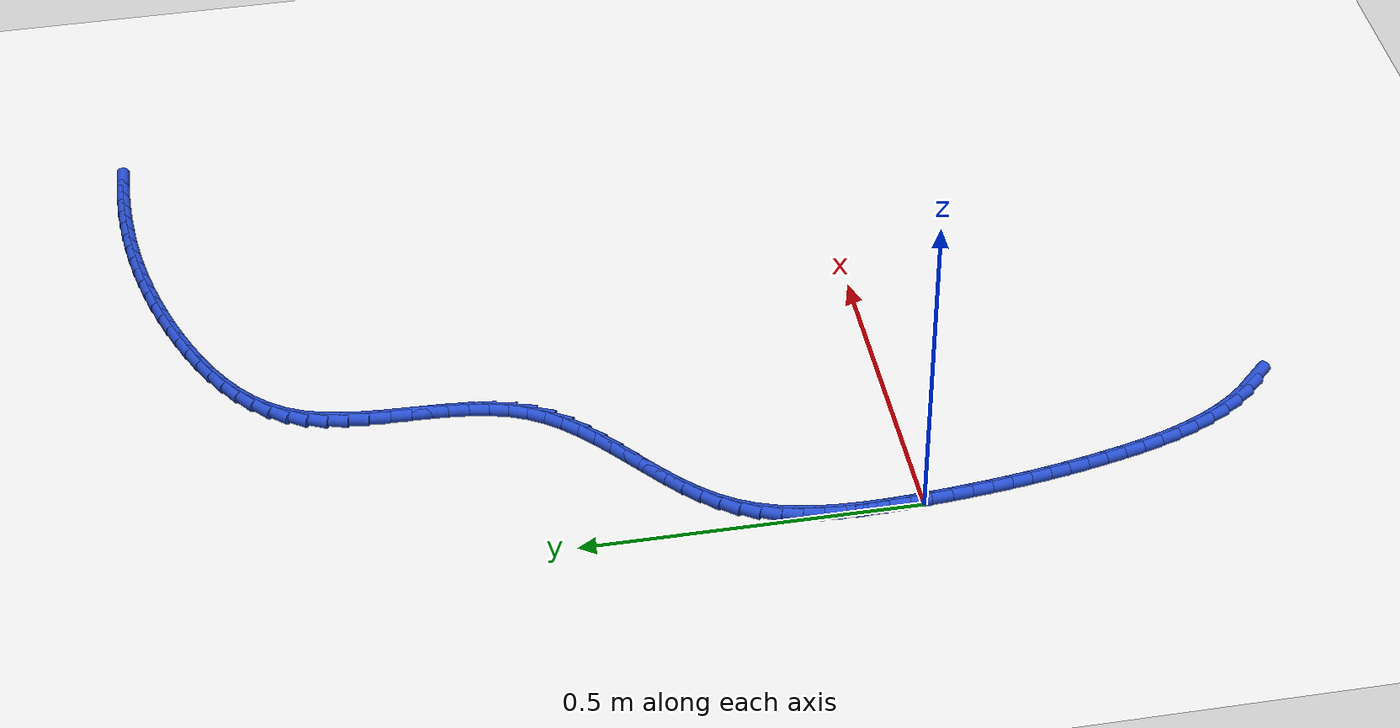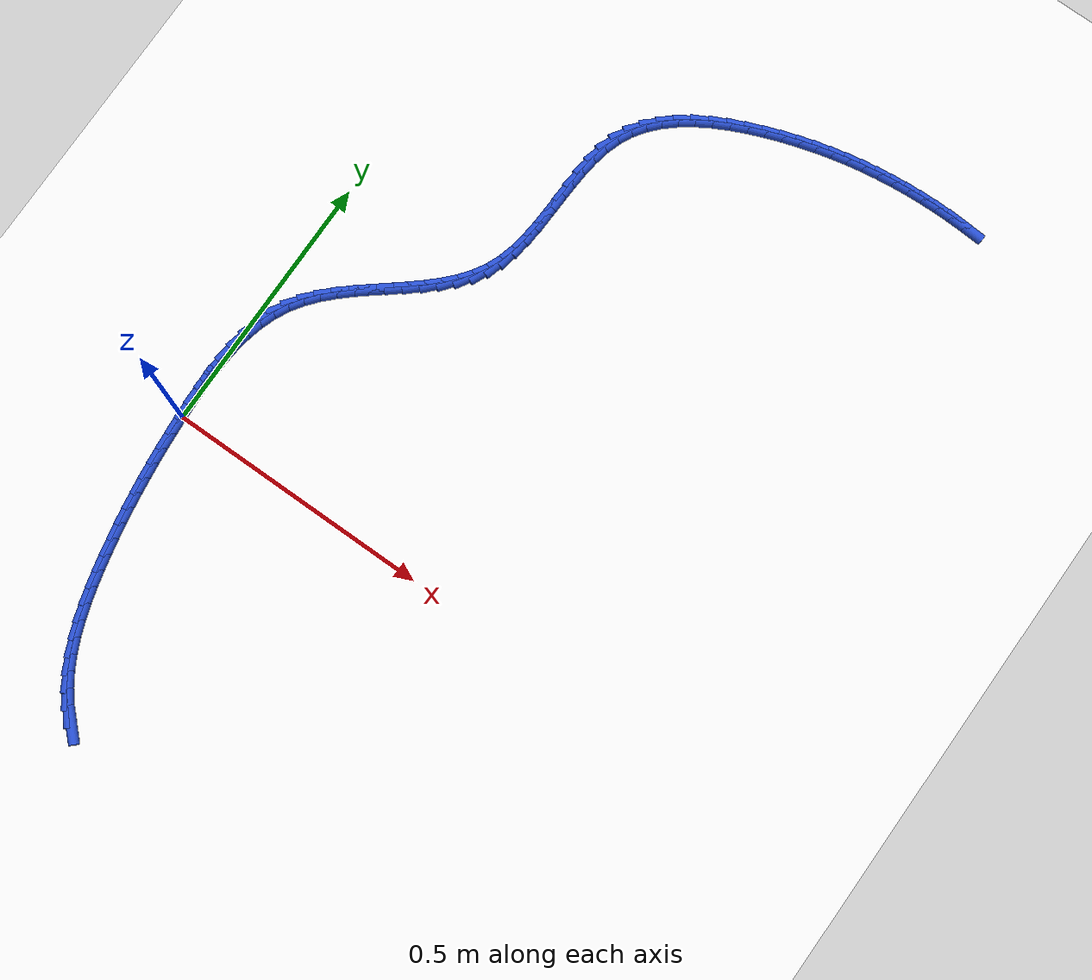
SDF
<sdf version="1.6">
 <world name="default">
  <model name="ground_plane">
   <static>1</static>
   <link name="link">
    <collision name="collision">
     <geometry><plane><normal>0 0 1</normal><size>100 100</size></plane></geometry>
     <surface><friction><ode><mu>100</mu><mu2>50</mu2></ode></friction></surface>
    </collision>
    <visual name="visual">
     <cast_shadows>0</cast_shadows>
     <geometry><plane><normal>0 0 1</normal><size>100 100</size></plane></geometry>
     <material>
      <script><uri>file://media/materials/scripts/gazebo.material</uri><name>Gazebo/WhiteGlow</name></script>
     </material>
    </visual>
   </link>
  </model>
  <model name="line">
   <link name="link_0">
    <pose>-1.8431436932253575e-17 3.469446951953614e-17 0.01 0 1.57 -1.5108364362840674</pose>
    <collision name="collision">
     <geometry><cylinder><radius>0.01</radius><length>0.08</length></cylinder></geometry>
    </collision>
    <visual name="visual">
     <material>
      <script><name>Gazebo/Blue</name><uri>file://media/materials/scripts/gazebo.material</uri></script>
     </material>
     <geometry><cylinder><radius>0.01</radius><length>0.08</length></cylinder></geometry>
    </visual>
   </link>
   <link name="link_1">
    <pose>-0.0018603580479526589 0.030989517353228024 0.01 0 1.57 -1.5329625650588325</pose>
    <collision name="collision">
     <geometry><cylinder><radius>0.01</radius><length>0.08</length></cylinder></geometry>
    </collision>
    <visual name="visual">
     <material>
      <script><name>Gazebo/Blue</name><uri>file://media/materials/scripts/gazebo.material</uri></script>
     </material>
     <geometry><cylinder><radius>0.01</radius><length>0.08</length></cylinder></geometry>
    </visual>
   </link>
   <link name="link_2">
    <pose>-0.003043777788168357 0.062254054253526286 0.01 0 1.57 -1.5652332365933455</pose>
    <collision name="collision">
     <geometry><cylinder><radius>0.01</radius><length>0.08</length></cylinder></geometry>
    </collision>
    <visual name="visual">
     <material>
      <script><name>Gazebo/Blue</name><uri>file://media/materials/scripts/gazebo.material</uri></script>
     </material>
     <geometry><cylinder><radius>0.01</radius><length>0.08</length></cylinder></geometry>
    </visual>
   </link>
   <link name="link_3">
    <pose>-0.00321780486593825 0.09353617915164875 0.01 0 1.57 1.5331937595008902</pose>
    <collision name="collision">
     <geometry><cylinder><radius>0.01</radius><length>0.08</length></cylinder></geometry>
    </collision>
    <visual name="visual">
     <material>
      <script><name>Gazebo/Blue</name><uri>file://media/materials/scripts/gazebo.material</uri></script>
     </material>
     <geometry><cylinder><radius>0.01</radius><length>0.08</length></cylinder></geometry>
    </visual>
   </link>
   <link name="link_4">
    <pose>-0.002049984926553456 0.12457846049834907 0.01 0 1.57 1.478016462440718</pose>
    <collision name="collision">
     <geometry><cylinder><radius>0.01</radius><length>0.08</length></cylinder></geometry>
    </collision>
    <visual name="visual">
     <material>
      <script><name>Gazebo/Blue</name><uri>file://media/materials/scripts/gazebo.material</uri></script>
     </material>
     <geometry><cylinder><radius>0.01</radius><length>0.08</length></cylinder></geometry>
    </visual>
   </link>
   <link name="link_5">
    <pose>0.0007921363846948824 0.15512346674438132 0.01 0 1.57 1.4094443238107668</pose>
    <collision name="collision">
     <geometry><cylinder><radius>0.01</radius><length>0.08</length></cylinder></geometry>
    </collision>
    <visual name="visual">
     <material>
      <script><name>Gazebo/Blue</name><uri>file://media/materials/scripts/gazebo.material</uri></script>
     </material>
     <geometry><cylinder><radius>0.01</radius><length>0.08</length></cylinder></geometry>
    </visual>
   </link>
   <link name="link_6">
    <pose>0.005641013422515643 0.18491376634049916 0.01 0 1.57 1.3260287247107136</pose>
    <collision name="collision">
     <geometry><cylinder><radius>0.01</radius><length>0.08</length></cylinder></geometry>
    </collision>
    <visual name="visual">
     <material>
      <script><name>Gazebo/Blue</name><uri>file://media/materials/scripts/gazebo.material</uri></script>
     </material>
     <geometry><cylinder><radius>0.01</radius><length>0.08</length></cylinder></geometry>
    </visual>
   </link>
   <link name="link_7">
    <pose>0.012829100541617695 0.21369192773745646 0.01 0 1.57 1.226636240695132</pose>
    <collision name="collision">
     <geometry><cylinder><radius>0.01</radius><length>0.08</length></cylinder></geometry>
    </collision>
    <visual name="visual">
     <material>
      <script><name>Gazebo/Blue</name><uri>file://media/materials/scripts/gazebo.material</uri></script>
     </material>
     <geometry><cylinder><radius>0.01</radius><length>0.08</length></cylinder></geometry>
    </visual>
   </link>
   <link name="link_8">
    <pose>0.02268885209670991 0.2412005193860071 0.01 0 1.57 1.1110644961267344</pose>
    <collision name="collision">
     <geometry><cylinder><radius>0.01</radius><length>0.08</length></cylinder></geometry>
    </collision>
    <visual name="visual">
     <material>
      <script><name>Gazebo/Blue</name><uri>file://media/materials/scripts/gazebo.material</uri></script>
     </material>
     <geometry><cylinder><radius>0.01</radius><length>0.08</length></cylinder></geometry>
    </visual>
   </link>
   <link name="link_9">
    <pose>0.035552722442501156 0.2671821097369049 0.01 0 1.57 0.9852909173942257</pose>
    <collision name="collision">
     <geometry><cylinder><radius>0.01</radius><length>0.08</length></cylinder></geometry>
    </collision>
    <visual name="visual">
     <material>
      <script><name>Gazebo/Blue</name><uri>file://media/materials/scripts/gazebo.material</uri></script>
     </material>
     <geometry><cylinder><radius>0.01</radius><length>0.08</length></cylinder></geometry>
    </visual>
   </link>
   <link name="link_10">
    <pose>0.05164222435093219 0.29144743432178616 0.01 0 1.57 0.8764779752378719</pose>
    <collision name="collision">
     <geometry><cylinder><radius>0.01</radius><length>0.08</length></cylinder></geometry>
    </collision>
    <visual name="visual">
     <material>
      <script><name>Gazebo/Blue</name><uri>file://media/materials/scripts/gazebo.material</uri></script>
     </material>
     <geometry><cylinder><radius>0.01</radius><length>0.08</length></cylinder></geometry>
    </visual>
   </link>
   <link name="link_11">
    <pose>0.0705706473687541 0.3141809460896137 0.01 0 1.57 0.7933697692231528</pose>
    <collision name="collision">
     <geometry><cylinder><radius>0.01</radius><length>0.08</length></cylinder></geometry>
    </collision>
    <visual name="visual">
     <material>
      <script><name>Gazebo/Blue</name><uri>file://media/materials/scripts/gazebo.material</uri></script>
     </material>
     <geometry><cylinder><radius>0.01</radius><length>0.08</length></cylinder></geometry>
    </visual>
   </link>
   <link name="link_12">
    <pose>0.09174392037291848 0.33569450893119346 0.01 0 1.57 0.7343645125878144</pose>
    <collision name="collision">
     <geometry><cylinder><radius>0.01</radius><length>0.08</length></cylinder></geometry>
    </collision>
    <visual name="visual">
     <material>
      <script><name>Gazebo/Blue</name><uri>file://media/materials/scripts/gazebo.material</uri></script>
     </material>
     <geometry><cylinder><radius>0.01</radius><length>0.08</length></cylinder></geometry>
    </visual>
   </link>
   <link name="link_13">
    <pose>0.11456779636597547 0.3563000948018122 0.01 0 1.57 0.6974355412849094</pose>
    <collision name="collision">
     <geometry><cylinder><radius>0.01</radius><length>0.08</length></cylinder></geometry>
    </collision>
    <visual name="visual">
     <material>
      <script><name>Gazebo/Blue</name><uri>file://media/materials/scripts/gazebo.material</uri></script>
     </material>
     <geometry><cylinder><radius>0.01</radius><length>0.08</length></cylinder></geometry>
    </visual>
   </link>
   <link name="link_14">
    <pose>0.1384480283504753 0.3763096756567571 0.01 0 1.57 0.6810134815637398</pose>
    <collision name="collision">
     <geometry><cylinder><radius>0.01</radius><length>0.08</length></cylinder></geometry>
    </collision>
    <visual name="visual">
     <material>
      <script><name>Gazebo/Blue</name><uri>file://media/materials/scripts/gazebo.material</uri></script>
     </material>
     <geometry><cylinder><radius>0.01</radius><length>0.08</length></cylinder></geometry>
    </visual>
   </link>
   <link name="link_15">
    <pose>0.16279036932896798 0.39603522345131503 0.01 0 1.57 0.6843706243961865</pose>
    <collision name="collision">
     <geometry><cylinder><radius>0.01</radius><length>0.08</length></cylinder></geometry>
    </collision>
    <visual name="visual">
     <material>
      <script><name>Gazebo/Blue</name><uri>file://media/materials/scripts/gazebo.material</uri></script>
     </material>
     <geometry><cylinder><radius>0.01</radius><length>0.08</length></cylinder></geometry>
    </visual>
   </link>
   <link name="link_16">
    <pose>0.18700057230400366 0.41578871014077284 0.01 0 1.57 0.707751987061713</pose>
    <collision name="collision">
     <geometry><cylinder><radius>0.01</radius><length>0.08</length></cylinder></geometry>
    </collision>
    <visual name="visual">
     <material>
      <script><name>Gazebo/Blue</name><uri>file://media/materials/scripts/gazebo.material</uri></script>
     </material>
     <geometry><cylinder><radius>0.01</radius><length>0.08</length></cylinder></geometry>
    </visual>
   </link>
   <link name="link_17">
    <pose>0.21048439027813257 0.4358821076804177 0.01 0 1.57 0.7523652915889322</pose>
    <collision name="collision">
     <geometry><cylinder><radius>0.01</radius><length>0.08</length></cylinder></geometry>
    </collision>
    <visual name="visual">
     <material>
      <script><name>Gazebo/Blue</name><uri>file://media/materials/scripts/gazebo.material</uri></script>
     </material>
     <geometry><cylinder><radius>0.01</radius><length>0.08</length></cylinder></geometry>
    </visual>
   </link>
   <link name="link_18">
    <pose>0.2326475762539047 0.45662738802553626 0.01 0 1.57 0.8202010065220533</pose>
    <collision name="collision">
     <geometry><cylinder><radius>0.01</radius><length>0.08</length></cylinder></geometry>
    </collision>
    <visual name="visual">
     <material>
      <script><name>Gazebo/Blue</name><uri>file://media/materials/scripts/gazebo.material</uri></script>
     </material>
     <geometry><cylinder><radius>0.01</radius><length>0.08</length></cylinder></geometry>
    </visual>
   </link>
   <link name="link_19">
    <pose>0.2528958832338702 0.4783365231314155 0.01 0 1.57 0.9135052787877467</pose>
    <collision name="collision">
     <geometry><cylinder><radius>0.01</radius><length>0.08</length></cylinder></geometry>
    </collision>
    <visual name="visual">
     <material>
      <script><name>Gazebo/Blue</name><uri>file://media/materials/scripts/gazebo.material</uri></script>
     </material>
     <geometry><cylinder><radius>0.01</radius><length>0.08</length></cylinder></geometry>
    </visual>
   </link>
   <link name="link_20">
    <pose>0.27063506422057937 0.5013214849533426 0.01 0 1.57 1.0336102357399797</pose>
    <collision name="collision">
     <geometry><cylinder><radius>0.01</radius><length>0.08</length></cylinder></geometry>
    </collision>
    <visual name="visual">
     <material>
      <script><name>Gazebo/Blue</name><uri>file://media/materials/scripts/gazebo.material</uri></script>
     </material>
     <geometry><cylinder><radius>0.01</radius><length>0.08</length></cylinder></geometry>
    </visual>
   </link>
   <link name="link_21">
    <pose>0.285270872216582 0.5258942454466042 0.01 0 1.57 1.1759216926767986</pose>
    <collision name="collision">
     <geometry><cylinder><radius>0.01</radius><length>0.08</length></cylinder></geometry>
    </collision>
    <visual name="visual">
     <material>
      <script><name>Gazebo/Blue</name><uri>file://media/materials/scripts/gazebo.material</uri></script>
     </material>
     <geometry><cylinder><radius>0.01</radius><length>0.08</length></cylinder></geometry>
    </visual>
   </link>
   <link name="link_22">
    <pose>0.2962867510966842 0.5523261369084196 0.01 0 1.57 1.3056099540510582</pose>
    <collision name="collision">
     <geometry><cylinder><radius>0.01</radius><length>0.08</length></cylinder></geometry>
    </collision>
    <visual name="visual">
     <material>
      <script><name>Gazebo/Blue</name><uri>file://media/materials/scripts/gazebo.material</uri></script>
     </material>
     <geometry><cylinder><radius>0.01</radius><length>0.08</length></cylinder></geometry>
    </visual>
   </link>
   <link name="link_23">
    <pose>0.30393461937423066 0.5804865068772168 0.01 0 1.57 1.404038919432104</pose>
    <collision name="collision">
     <geometry><cylinder><radius>0.01</radius><length>0.08</length></cylinder></geometry>
    </collision>
    <visual name="visual">
     <material>
      <script><name>Gazebo/Blue</name><uri>file://media/materials/scripts/gazebo.material</uri></script>
     </material>
     <geometry><cylinder><radius>0.01</radius><length>0.08</length></cylinder></geometry>
    </visual>
   </link>
   <link name="link_24">
    <pose>0.30890492336611636 0.6100153114652229 0.01 0 1.57 1.4732405392733319</pose>
    <collision name="collision">
     <geometry><cylinder><radius>0.01</radius><length>0.08</length></cylinder></geometry>
    </collision>
    <visual name="visual">
     <material>
      <script><name>Gazebo/Blue</name><uri>file://media/materials/scripts/gazebo.material</uri></script>
     </material>
     <geometry><cylinder><radius>0.01</radius><length>0.08</length></cylinder></geometry>
    </visual>
   </link>
   <link name="link_25">
    <pose>0.31189322833100325 0.6405498290950341 0.01 0 1.57 1.516263943865348</pose>
    <collision name="collision">
     <geometry><cylinder><radius>0.01</radius><length>0.08</length></cylinder></geometry>
    </collision>
    <visual name="visual">
     <material>
      <script><name>Gazebo/Blue</name><uri>file://media/materials/scripts/gazebo.material</uri></script>
     </material>
     <geometry><cylinder><radius>0.01</radius><length>0.08</length></cylinder></geometry>
    </visual>
   </link>
   <link name="link_26">
    <pose>0.31359509952755305 0.6717273381892465 0.01 0 1.57 1.5354937356088845</pose>
    <collision name="collision">
     <geometry><cylinder><radius>0.01</radius><length>0.08</length></cylinder></geometry>
    </collision>
    <visual name="visual">
     <material>
      <script><name>Gazebo/Blue</name><uri>file://media/materials/scripts/gazebo.material</uri></script>
     </material>
     <geometry><cylinder><radius>0.01</radius><length>0.08</length></cylinder></geometry>
    </visual>
   </link>
   <link name="link_27">
    <pose>0.3147061022144279 0.7031851171704563 0.01 0 1.57 1.5320687118209877</pose>
    <collision name="collision">
     <geometry><cylinder><radius>0.01</radius><length>0.08</length></cylinder></geometry>
    </collision>
    <visual name="visual">
     <material>
      <script><name>Gazebo/Blue</name><uri>file://media/materials/scripts/gazebo.material</uri></script>
     </material>
     <geometry><cylinder><radius>0.01</radius><length>0.08</length></cylinder></geometry>
    </visual>
   </link>
   <link name="link_28">
    <pose>0.31592180165028955 0.7345604444612596 0.01 0 1.57 1.5057105211670865</pose>
    <collision name="collision">
     <geometry><cylinder><radius>0.01</radius><length>0.08</length></cylinder></geometry>
    </collision>
    <visual name="visual">
     <material>
      <script><name>Gazebo/Blue</name><uri>file://media/materials/scripts/gazebo.material</uri></script>
     </material>
     <geometry><cylinder><radius>0.01</radius><length>0.08</length></cylinder></geometry>
    </visual>
   </link>
   <link name="link_29">
    <pose>0.31793776309379995 0.7654905984842523 0.01 0 1.57 1.4547357579366387</pose>
    <collision name="collision">
     <geometry><cylinder><radius>0.01</radius><length>0.08</length></cylinder></geometry>
    </collision>
    <visual name="visual">
     <material>
      <script><name>Gazebo/Blue</name><uri>file://media/materials/scripts/gazebo.material</uri></script>
     </material>
     <geometry><cylinder><radius>0.01</radius><length>0.08</length></cylinder></geometry>
    </visual>
   </link>
   <link name="link_30">
    <pose>0.321449551803621 0.7956128576620309 0.01 0 1.57 1.3762967613827837</pose>
    <collision name="collision">
     <geometry><cylinder><radius>0.01</radius><length>0.08</length></cylinder></geometry>
    </collision>
    <visual name="visual">
     <material>
      <script><name>Gazebo/Blue</name><uri>file://media/materials/scripts/gazebo.material</uri></script>
     </material>
     <geometry><cylinder><radius>0.01</radius><length>0.08</length></cylinder></geometry>
    </visual>
   </link>
   <link name="link_31">
    <pose>0.3271527330384145 0.8245645004171915 0.01 0 1.57 1.2671833256716287</pose>
    <collision name="collision">
     <geometry><cylinder><radius>0.01</radius><length>0.08</length></cylinder></geometry>
    </collision>
    <visual name="visual">
     <material>
      <script><name>Gazebo/Blue</name><uri>file://media/materials/scripts/gazebo.material</uri></script>
     </material>
     <geometry><cylinder><radius>0.01</radius><length>0.08</length></cylinder></geometry>
    </visual>
   </link>
   <link name="link_32">
    <pose>0.3357428720568426 0.8519828051723302 0.01 0 1.57 1.1260675082765381</pose>
    <collision name="collision">
     <geometry><cylinder><radius>0.01</radius><length>0.08</length></cylinder></geometry>
    </collision>
    <visual name="visual">
     <material>
      <script><name>Gazebo/Blue</name><uri>file://media/materials/scripts/gazebo.material</uri></script>
     </material>
     <geometry><cylinder><radius>0.01</radius><length>0.08</length></cylinder></geometry>
    </visual>
   </link>
   <link name="link_33">
    <pose>0.34790756262974987 0.8775082929686959 0.01 0 1.57 0.9725308441972007</pose>
    <collision name="collision">
     <geometry><cylinder><radius>0.01</radius><length>0.08</length></cylinder></geometry>
    </collision>
    <visual name="visual">
     <material>
      <script><name>Gazebo/Blue</name><uri>file://media/materials/scripts/gazebo.material</uri></script>
     </material>
     <geometry><cylinder><radius>0.01</radius><length>0.08</length></cylinder></geometry>
    </visual>
   </link>
   <link name="link_34">
    <pose>0.3638928426894296 0.9009610996485867 0.01 0 1.57 0.8363248654371503</pose>
    <collision name="collision">
     <geometry><cylinder><radius>0.01</radius><length>0.08</length></cylinder></geometry>
    </collision>
    <visual name="visual">
     <material>
      <script><name>Gazebo/Blue</name><uri>file://media/materials/scripts/gazebo.material</uri></script>
     </material>
     <geometry><cylinder><radius>0.01</radius><length>0.08</length></cylinder></geometry>
    </visual>
   </link>
   <link name="link_35">
    <pose>0.38328066409595246 0.9224314960572341 0.01 0 1.57 0.7206730497777499</pose>
    <collision name="collision">
     <geometry><cylinder><radius>0.01</radius><length>0.08</length></cylinder></geometry>
    </collision>
    <visual name="visual">
     <material>
      <script><name>Gazebo/Blue</name><uri>file://media/materials/scripts/gazebo.material</uri></script>
     </material>
     <geometry><cylinder><radius>0.01</radius><length>0.08</length></cylinder></geometry>
    </visual>
   </link>
   <link name="link_36">
    <pose>0.40559816429354234 0.9420320502886818 0.01 0 1.57 0.6241764843903241</pose>
    <collision name="collision">
     <geometry><cylinder><radius>0.01</radius><length>0.08</length></cylinder></geometry>
    </collision>
    <visual name="visual">
     <material>
      <script><name>Gazebo/Blue</name><uri>file://media/materials/scripts/gazebo.material</uri></script>
     </material>
     <geometry><cylinder><radius>0.01</radius><length>0.08</length></cylinder></geometry>
    </visual>
   </link>
   <link name="link_37">
    <pose>0.4303724807264235 0.9598753304369729 0.01 0 1.57 0.5443564939224657</pose>
    <collision name="collision">
     <geometry><cylinder><radius>0.01</radius><length>0.08</length></cylinder></geometry>
    </collision>
    <visual name="visual">
     <material>
      <script><name>Gazebo/Blue</name><uri>file://media/materials/scripts/gazebo.material</uri></script>
     </material>
     <geometry><cylinder><radius>0.01</radius><length>0.08</length></cylinder></geometry>
    </visual>
   </link>
   <link name="link_38">
    <pose>0.4571307508388197 0.9760739045961517 0.01 0 1.57 0.47858237269939863</pose>
    <collision name="collision">
     <geometry><cylinder><radius>0.01</radius><length>0.08</length></cylinder></geometry>
    </collision>
    <visual name="visual">
     <material>
      <script><name>Gazebo/Blue</name><uri>file://media/materials/scripts/gazebo.material</uri></script>
     </material>
     <geometry><cylinder><radius>0.01</radius><length>0.08</length></cylinder></geometry>
    </visual>
   </link>
   <link name="link_39">
    <pose>0.4854001120749556 0.990740340860262 0.01 0 1.57 0.42451123222440756</pose>
    <collision name="collision">
     <geometry><cylinder><radius>0.01</radius><length>0.08</length></cylinder></geometry>
    </collision>
    <visual name="visual">
     <material>
      <script><name>Gazebo/Blue</name><uri>file://media/materials/scripts/gazebo.material</uri></script>
     </material>
     <geometry><cylinder><radius>0.01</radius><length>0.08</length></cylinder></geometry>
    </visual>
   </link>
   <link name="link_40">
    <pose>0.514707701879055 1.0039872073233473 0.01 0 1.57 0.3802374632442807</pose>
    <collision name="collision">
     <geometry><cylinder><radius>0.01</radius><length>0.08</length></cylinder></geometry>
    </collision>
    <visual name="visual">
     <material>
      <script><name>Gazebo/Blue</name><uri>file://media/materials/scripts/gazebo.material</uri></script>
     </material>
     <geometry><cylinder><radius>0.01</radius><length>0.08</length></cylinder></geometry>
    </visual>
   </link>
   <link name="link_41">
    <pose>0.5445806576953421 1.0159270720794515 0.01 0 1.57 0.3440077576885174</pose>
    <collision name="collision">
     <geometry><cylinder><radius>0.01</radius><length>0.08</length></cylinder></geometry>
    </collision>
    <visual name="visual">
     <material>
      <script><name>Gazebo/Blue</name><uri>file://media/materials/scripts/gazebo.material</uri></script>
     </material>
     <geometry><cylinder><radius>0.01</radius><length>0.08</length></cylinder></geometry>
    </visual>
   </link>
   <link name="link_42">
    <pose>0.5745652162206966 1.02666911667889 0.01 0 1.57 0.31079603707561204</pose>
    <collision name="collision">
     <geometry><cylinder><radius>0.01</radius><length>0.08</length></cylinder></geometry>
    </collision>
    <visual name="visual">
     <material>
      <script><name>Gazebo/Blue</name><uri>file://media/materials/scripts/gazebo.material</uri></script>
     </material>
     <geometry><cylinder><radius>0.01</radius><length>0.08</length></cylinder></geometry>
    </visual>
   </link>
   <link name="link_43">
    <pose>0.6044726120363393 1.0362755351306763 0.01 0 1.57 0.2775009803824403</pose>
    <collision name="collision">
     <geometry><cylinder><radius>0.01</radius><length>0.08</length></cylinder></geometry>
    </collision>
    <visual name="visual">
     <material>
      <script><name>Gazebo/Blue</name><uri>file://media/materials/scripts/gazebo.material</uri></script>
     </material>
     <geometry><cylinder><radius>0.01</radius><length>0.08</length></cylinder></geometry>
    </visual>
   </link>
   <link name="link_44">
    <pose>0.6343079424751948 1.044774147078624 0.01 0 1.57 0.24417680208551315</pose>
    <collision name="collision">
     <geometry><cylinder><radius>0.01</radius><length>0.08</length></cylinder></geometry>
    </collision>
    <visual name="visual">
     <material>
      <script><name>Gazebo/Blue</name><uri>file://media/materials/scripts/gazebo.material</uri></script>
     </material>
     <geometry><cylinder><radius>0.01</radius><length>0.08</length></cylinder></geometry>
    </visual>
   </link>
   <link name="link_45">
    <pose>0.6640807399340121 1.0521919857725537 0.01 0 1.57 0.21095083937448827</pose>
    <collision name="collision">
     <geometry><cylinder><radius>0.01</radius><length>0.08</length></cylinder></geometry>
    </collision>
    <visual name="visual">
     <material>
      <script><name>Gazebo/Blue</name><uri>file://media/materials/scripts/gazebo.material</uri></script>
     </material>
     <geometry><cylinder><radius>0.01</radius><length>0.08</length></cylinder></geometry>
    </visual>
   </link>
   <link name="link_46">
    <pose>0.6938005368095398 1.0585560844622863 0.01 0 1.57 0.17795104378243407</pose>
    <collision name="collision">
     <geometry><cylinder><radius>0.01</radius><length>0.08</length></cylinder></geometry>
    </collision>
    <visual name="visual">
     <material>
      <script><name>Gazebo/Blue</name><uri>file://media/materials/scripts/gazebo.material</uri></script>
     </material>
     <geometry><cylinder><radius>0.01</radius><length>0.08</length></cylinder></geometry>
    </visual>
   </link>
   <link name="link_47">
    <pose>0.7234768654985271 1.0638934763976426 0.01 0 1.57 0.14530364527494383</pose>
    <collision name="collision">
     <geometry><cylinder><radius>0.01</radius><length>0.08</length></cylinder></geometry>
    </collision>
    <visual name="visual">
     <material>
      <script><name>Gazebo/Blue</name><uri>file://media/materials/scripts/gazebo.material</uri></script>
     </material>
     <geometry><cylinder><radius>0.01</radius><length>0.08</length></cylinder></geometry>
    </visual>
   </link>
   <link name="link_48">
    <pose>0.7531192583977223 1.0682311948284429 0.01 0 1.57 0.11313090019355598</pose>
    <collision name="collision">
     <geometry><cylinder><radius>0.01</radius><length>0.08</length></cylinder></geometry>
    </collision>
    <visual name="visual">
     <material>
      <script><name>Gazebo/Blue</name><uri>file://media/materials/scripts/gazebo.material</uri></script>
     </material>
     <geometry><cylinder><radius>0.01</radius><length>0.08</length></cylinder></geometry>
    </visual>
   </link>
   <link name="link_49">
    <pose>0.7827372479038746 1.0715962730045077 0.01 0 1.57 0.08154902442503599</pose>
    <collision name="collision">
     <geometry><cylinder><radius>0.01</radius><length>0.08</length></cylinder></geometry>
    </collision>
    <visual name="visual">
     <material>
      <script><name>Gazebo/Blue</name><uri>file://media/materials/scripts/gazebo.material</uri></script>
     </material>
     <geometry><cylinder><radius>0.01</radius><length>0.08</length></cylinder></geometry>
    </visual>
   </link>
   <link name="link_50">
    <pose>0.8123403664137328 1.074015744175658 0.01 0 1.57 0.0506663976457649</pose>
    <collision name="collision">
     <geometry><cylinder><radius>0.01</radius><length>0.08</length></cylinder></geometry>
    </collision>
    <visual name="visual">
     <material>
      <script><name>Gazebo/Blue</name><uri>file://media/materials/scripts/gazebo.material</uri></script>
     </material>
     <geometry><cylinder><radius>0.01</radius><length>0.08</length></cylinder></geometry>
    </visual>
   </link>
   <link name="link_51">
    <pose>0.8419381463240457 1.0755166415917141 0.01 0 1.57 0.020582102683906263</pose>
    <collision name="collision">
     <geometry><cylinder><radius>0.01</radius><length>0.08</length></cylinder></geometry>
    </collision>
    <visual name="visual">
     <material>
      <script><name>Gazebo/Blue</name><uri>file://media/materials/scripts/gazebo.material</uri></script>
     </material>
     <geometry><cylinder><radius>0.01</radius><length>0.08</length></cylinder></geometry>
    </visual>
   </link>
   <link name="link_52">
    <pose>0.871540120031562 1.0761259985024962 0.01 0 1.57 -0.008615161315899237</pose>
    <collision name="collision">
     <geometry><cylinder><radius>0.01</radius><length>0.08</length></cylinder></geometry>
    </collision>
    <visual name="visual">
     <material>
      <script><name>Gazebo/Blue</name><uri>file://media/materials/scripts/gazebo.material</uri></script>
     </material>
     <geometry><cylinder><radius>0.01</radius><length>0.08</length></cylinder></geometry>
    </visual>
   </link>
   <link name="link_53">
    <pose>0.9011558199330305 1.0758708481578256 0.01 0 1.57 -0.036847779217226824</pose>
    <collision name="collision">
     <geometry><cylinder><radius>0.01</radius><length>0.08</length></cylinder></geometry>
    </collision>
    <visual name="visual">
     <material>
      <script><name>Gazebo/Blue</name><uri>file://media/materials/scripts/gazebo.material</uri></script>
     </material>
     <geometry><cylinder><radius>0.01</radius><length>0.08</length></cylinder></geometry>
    </visual>
   </link>
   <link name="link_54">
    <pose>0.9307947784252002 1.0747782238075227 0.01 0 1.57 -0.06404954492907519</pose>
    <collision name="collision">
     <geometry><cylinder><radius>0.01</radius><length>0.08</length></cylinder></geometry>
    </collision>
    <visual name="visual">
     <material>
      <script><name>Gazebo/Blue</name><uri>file://media/materials/scripts/gazebo.material</uri></script>
     </material>
     <geometry><cylinder><radius>0.01</radius><length>0.08</length></cylinder></geometry>
    </visual>
   </link>
   <link name="link_211">
    <pose>0.1620903935790999 -0.5357622615632148 0.01 0 1.57 -0.7862779521350598</pose>
    <collision name="collision">
     <geometry><cylinder><radius>0.01</radius><length>0.08</length></cylinder></geometry>
    </collision>
    <visual name="visual">
     <material>
      <script><name>Gazebo/Blue</name><uri>file://media/materials/scripts/gazebo.material</uri></script>
     </material>
     <geometry><cylinder><radius>0.01</radius><length>0.08</length></cylinder></geometry>
    </visual>
   </link>
   <link name="link_212">
    <pose>0.14145817223117937 -0.5150937042459951 0.01 0 1.57 -0.8913050627688488</pose>
    <collision name="collision">
     <geometry><cylinder><radius>0.01</radius><length>0.08</length></cylinder></geometry>
    </collision>
    <visual name="visual">
     <material>
      <script><name>Gazebo/Blue</name><uri>file://media/materials/scripts/gazebo.material</uri></script>
     </material>
     <geometry><cylinder><radius>0.01</radius><length>0.08</length></cylinder></geometry>
    </visual>
   </link>
   <link name="link_213">
    <pose>0.12308447670504825 -0.4923489237604761 0.01 0 1.57 -0.9869099794626318</pose>
    <collision name="collision">
     <geometry><cylinder><radius>0.01</radius><length>0.08</length></cylinder></geometry>
    </collision>
    <visual name="visual">
     <material>
      <script><name>Gazebo/Blue</name><uri>file://media/materials/scripts/gazebo.material</uri></script>
     </material>
     <geometry><cylinder><radius>0.01</radius><length>0.08</length></cylinder></geometry>
    </visual>
   </link>
   <link name="link_214">
    <pose>0.10682927141728878 -0.4677473041487723 0.01 0 1.57 -1.0701260753151196</pose>
    <collision name="collision">
     <geometry><cylinder><radius>0.01</radius><length>0.08</length></cylinder></geometry>
    </collision>
    <visual name="visual">
     <material>
      <script><name>Gazebo/Blue</name><uri>file://media/materials/scripts/gazebo.material</uri></script>
     </material>
     <geometry><cylinder><radius>0.01</radius><length>0.08</length></cylinder></geometry>
    </visual>
   </link>
   <link name="link_215">
    <pose>0.09250266761891893 -0.44156435775494196 0.01 0 1.57 -1.1413685312019493</pose>
    <collision name="collision">
     <geometry><cylinder><radius>0.01</radius><length>0.08</length></cylinder></geometry>
    </collision>
    <visual name="visual">
     <material>
      <script><name>Gazebo/Blue</name><uri>file://media/materials/scripts/gazebo.material</uri></script>
     </material>
     <geometry><cylinder><radius>0.01</radius><length>0.08</length></cylinder></geometry>
    </visual>
   </link>
   <link name="link_216">
    <pose>0.07991477656095777 -0.41407559692304513 0.01 0 1.57 -1.201480057226788</pose>
    <collision name="collision">
     <geometry><cylinder><radius>0.01</radius><length>0.08</length></cylinder></geometry>
    </collision>
    <visual name="visual">
     <material>
      <script><name>Gazebo/Blue</name><uri>file://media/materials/scripts/gazebo.material</uri></script>
     </material>
     <geometry><cylinder><radius>0.01</radius><length>0.08</length></cylinder></geometry>
    </visual>
   </link>
   <link name="link_217">
    <pose>0.06887570949442322 -0.3855565339971396 0.01 0 1.57 -1.2514401591806574</pose>
    <collision name="collision">
     <geometry><cylinder><radius>0.01</radius><length>0.08</length></cylinder></geometry>
    </collision>
    <visual name="visual">
     <material>
      <script><name>Gazebo/Blue</name><uri>file://media/materials/scripts/gazebo.material</uri></script>
     </material>
     <geometry><cylinder><radius>0.01</radius><length>0.08</length></cylinder></geometry>
    </visual>
   </link>
   <link name="link_218">
    <pose>0.0591955776703336 -0.35628268132128427 0.01 0 1.57 -1.2921800276538506</pose>
    <collision name="collision">
     <geometry><cylinder><radius>0.01</radius><length>0.08</length></cylinder></geometry>
    </collision>
    <visual name="visual">
     <material>
      <script><name>Gazebo/Blue</name><uri>file://media/materials/scripts/gazebo.material</uri></script>
     </material>
     <geometry><cylinder><radius>0.01</radius><length>0.08</length></cylinder></geometry>
    </visual>
   </link>
   <link name="link_219">
    <pose>0.05068449233970705 -0.3265295512395369 0.01 0 1.57 -1.3244764595361649</pose>
    <collision name="collision">
     <geometry><cylinder><radius>0.01</radius><length>0.08</length></cylinder></geometry>
    </collision>
    <visual name="visual">
     <material>
      <script><name>Gazebo/Blue</name><uri>file://media/materials/scripts/gazebo.material</uri></script>
     </material>
     <geometry><cylinder><radius>0.01</radius><length>0.08</length></cylinder></geometry>
    </visual>
   </link>
   <link name="link_220">
    <pose>0.043152564753562314 -0.29657265609595784 0.01 0 1.57 -1.3488942126210712</pose>
    <collision name="collision">
     <geometry><cylinder><radius>0.01</radius><length>0.08</length></cylinder></geometry>
    </collision>
    <visual name="visual">
     <material>
      <script><name>Gazebo/Blue</name><uri>file://media/materials/scripts/gazebo.material</uri></script>
     </material>
     <geometry><cylinder><radius>0.01</radius><length>0.08</length></cylinder></geometry>
    </visual>
   </link>
   <link name="link_221">
    <pose>0.03640993647427006 -0.2666874382081853 0.01 0 1.57 -1.367457112899224</pose>
    <collision name="collision">
     <geometry><cylinder><radius>0.01</radius><length>0.08</length></cylinder></geometry>
    </collision>
    <visual name="visual">
     <material>
      <script><name>Gazebo/Blue</name><uri>file://media/materials/scripts/gazebo.material</uri></script>
     </material>
     <geometry><cylinder><radius>0.01</radius><length>0.08</length></cylinder></geometry>
    </visual>
   </link>
   <link name="link_222">
    <pose>0.03030248696760338 -0.2370667768537589 0.01 0 1.57 -1.385183790025293</pose>
    <collision name="collision">
     <geometry><cylinder><radius>0.01</radius><length>0.08</length></cylinder></geometry>
    </collision>
    <visual name="visual">
     <material>
      <script><name>Gazebo/Blue</name><uri>file://media/materials/scripts/gazebo.material</uri></script>
     </material>
     <geometry><cylinder><radius>0.01</radius><length>0.08</length></cylinder></geometry>
    </visual>
   </link>
   <link name="link_223">
    <pose>0.02478092089540462 -0.20766138022454658 0.01 0 1.57 -1.4028162166635814</pose>
    <collision name="collision">
     <geometry><cylinder><radius>0.01</radius><length>0.08</length></cylinder></geometry>
    </collision>
    <visual name="visual">
     <material>
      <script><name>Gazebo/Blue</name><uri>file://media/materials/scripts/gazebo.material</uri></script>
     </material>
     <geometry><cylinder><radius>0.01</radius><length>0.08</length></cylinder></geometry>
    </visual>
   </link>
   <link name="link_224">
    <pose>0.019815063322494064 -0.1783777838428583 0.01 0 1.57 -1.4201673221074964</pose>
    <collision name="collision">
     <geometry><cylinder><radius>0.01</radius><length>0.08</length></cylinder></geometry>
    </collision>
    <visual name="visual">
     <material>
      <script><name>Gazebo/Blue</name><uri>file://media/materials/scripts/gazebo.material</uri></script>
     </material>
     <geometry><cylinder><radius>0.01</radius><length>0.08</length></cylinder></geometry>
    </visual>
   </link>
   <link name="link_225">
    <pose>0.015374739313691568 -0.14912252323100197 0.01 0 1.57 -1.4370526862832975</pose>
    <collision name="collision">
     <geometry><cylinder><radius>0.01</radius><length>0.08</length></cylinder></geometry>
    </collision>
    <visual name="visual">
     <material>
      <script><name>Gazebo/Blue</name><uri>file://media/materials/scripts/gazebo.material</uri></script>
     </material>
     <geometry><cylinder><radius>0.01</radius><length>0.08</length></cylinder></geometry>
    </visual>
   </link>
   <link name="link_226">
    <pose>0.011429773933817132 -0.11980213391128619 0.01 0 1.57 -1.453297259931067</pose>
    <collision name="collision">
     <geometry><cylinder><radius>0.01</radius><length>0.08</length></cylinder></geometry>
    </collision>
    <visual name="visual">
     <material>
      <script><name>Gazebo/Blue</name><uri>file://media/materials/scripts/gazebo.material</uri></script>
     </material>
     <geometry><cylinder><radius>0.01</radius><length>0.08</length></cylinder></geometry>
    </visual>
   </link>
   <link name="link_227">
    <pose>0.007949992247690755 -0.09032315140601954 0.01 0 1.57 -1.4687415401283908</pose>
    <collision name="collision">
     <geometry><cylinder><radius>0.01</radius><length>0.08</length></cylinder></geometry>
    </collision>
    <visual name="visual">
     <material>
      <script><name>Gazebo/Blue</name><uri>file://media/materials/scripts/gazebo.material</uri></script>
     </material>
     <geometry><cylinder><radius>0.01</radius><length>0.08</length></cylinder></geometry>
    </visual>
   </link>
   <link name="link_228">
    <pose>0.004905219320132373 -0.060592111237509905 0.01 0 1.57 -1.4832467376959935</pose>
    <collision name="collision">
     <geometry><cylinder><radius>0.01</radius><length>0.08</length></cylinder></geometry>
    </collision>
    <visual name="visual">
     <material>
      <script><name>Gazebo/Blue</name><uri>file://media/materials/scripts/gazebo.material</uri></script>
     </material>
     <geometry><cylinder><radius>0.01</radius><length>0.08</length></cylinder></geometry>
    </visual>
   </link>
   <link name="link_229">
    <pose>0.002265280215962135 -0.030515548928067356 0.01 0 1.57 -1.4966985977093497</pose>
    <collision name="collision">
     <geometry><cylinder><radius>0.01</radius><length>0.08</length></cylinder></geometry>
    </collision>
    <visual name="visual">
     <material>
      <script><name>Gazebo/Blue</name><uri>file://media/materials/scripts/gazebo.material</uri></script>
     </material>
     <geometry><cylinder><radius>0.01</radius><length>0.08</length></cylinder></geometry>
    </visual>
   </link>
   <link name="link_230">
    <pose>-3.859759734048396e-17 2.5673907444456745e-16 0.01 0 1.57 -1.509009694176006</pose>
    <collision name="collision">
     <geometry><cylinder><radius>0.01</radius><length>0.08</length></cylinder></geometry>
    </collision>
    <visual name="visual">
     <material>
      <script><name>Gazebo/Blue</name><uri>file://media/materials/scripts/gazebo.material</uri></script>
     </material>
     <geometry><cylinder><radius>0.01</radius><length>0.08</length></cylinder></geometry>
    </visual>
   </link>
   <link name="link_231">
    <pose>-0.0019207962629341443 0.031048000024384327 0.01 0 1.57 -1.5201201856228677</pose>
    <collision name="collision">
     <geometry><cylinder><radius>0.01</radius><length>0.08</length></cylinder></geometry>
    </collision>
    <visual name="visual">
     <material>
      <script><name>Gazebo/Blue</name><uri>file://media/materials/scripts/gazebo.material</uri></script>
     </material>
     <geometry><cylinder><radius>0.01</radius><length>0.08</length></cylinder></geometry>
    </visual>
   </link>
   <link name="link_232">
    <pose>-0.0035272835080201828 0.06272191562277628 0.01 0 1.57 -1.51461864042677</pose>
    <collision name="collision">
     <geometry><cylinder><radius>0.01</radius><length>0.08</length></cylinder></geometry>
    </collision>
    <visual name="visual">
     <material>
      <script><name>Gazebo/Blue</name><uri>file://media/materials/scripts/gazebo.material</uri></script>
     </material>
     <geometry><cylinder><radius>0.01</radius><length>0.08</length></cylinder></geometry>
    </visual>
   </link>
  </model>
 </world>
</sdf>
